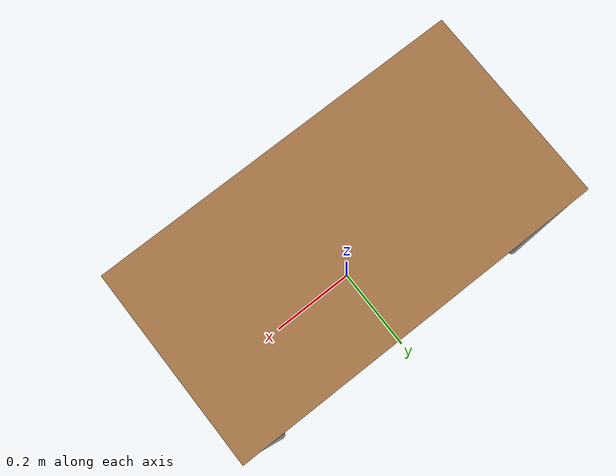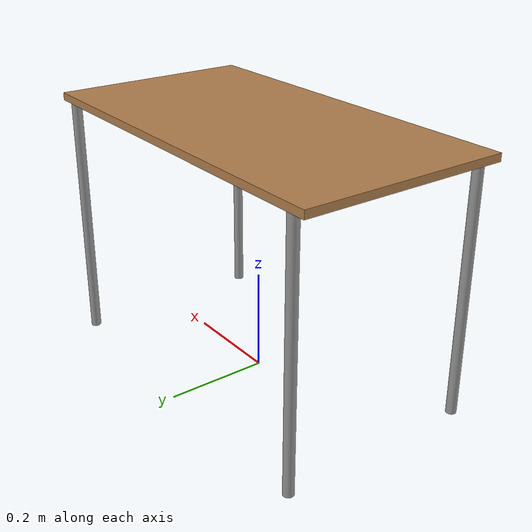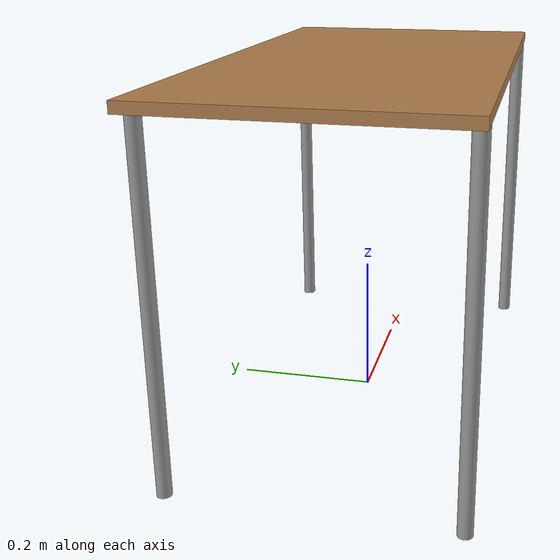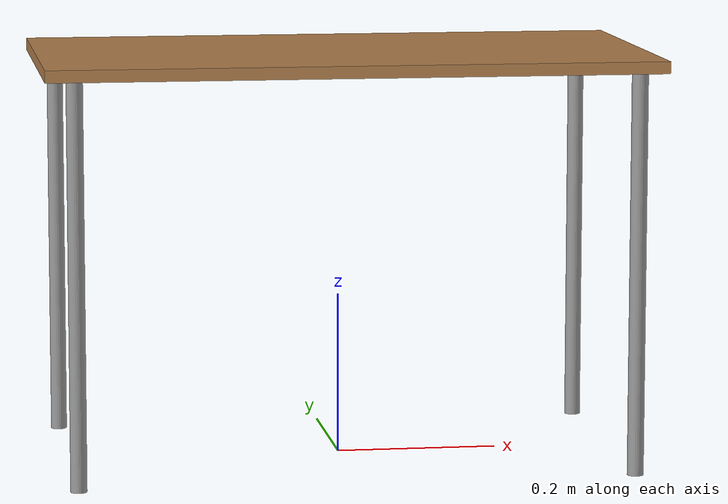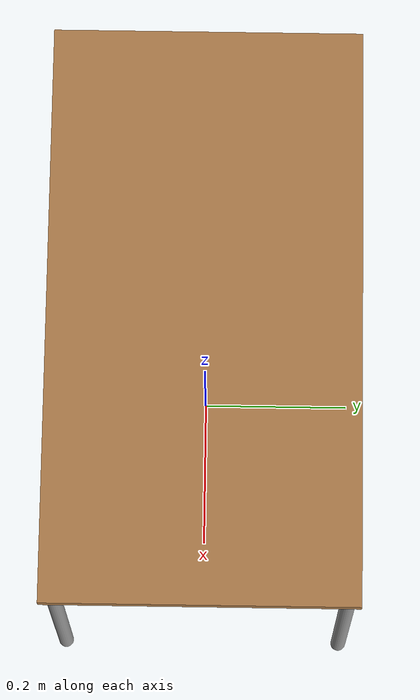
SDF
<sdf version="1.5">
  <model name="Table">
    <static>true</static>
    <link name="link">
      <!-- TABLE SURFACE -->
      <collision name="surface">
        <pose>0 0 0.5 0 0 0</pose>
        <geometry>
          <box>
            <size>0.75 0.4 0.015</size>
          </box>
        </geometry>
        <surface>
          <friction>
            <ode>
              <mu>0.6</mu>
              <mu2>0.6</mu2>
            </ode>
          </friction>
        </surface>
      </collision>
      <visual name="visual1">
        <pose>0 0 0.5 0 0 0</pose>
        <geometry>
          <box>
            <size>0.75 0.4 0.015</size>
          </box>
        </geometry>
        <material>
          <diffuse>1.0 1.0 1.0</diffuse>
          <script>
            <uri>file://media/materials/scripts/gazebo.material</uri>
            <name>Gazebo/Wood</name>
          </script>
          <pbr>
            <metal>
              <albedo_map>model://Table/Table_Diffuse.jpg</albedo_map>
            </metal>
          </pbr>
        </material>
      </visual>

      <!-- FRONT LEFT LEG -->
      <collision name="front_left_leg">
        <pose>0.34 0.9 0.25 0 0 0</pose>  <!-- Z = leg_length/2 = 0.5/2 -->
        <geometry>
          <cylinder>
            <radius>0.01</radius>
            <length>0.5</length>
          </cylinder>
        </geometry>
      </collision>
      <visual name="front_left_leg">
        <pose>0.34 0.19 0.25 0 0 0</pose>
        <geometry>
          <cylinder>
            <radius>0.01</radius>
            <length>0.5</length>
          </cylinder>
        </geometry>
        <material>
          <diffuse>0.5 0.5 0.5</diffuse>
          <script>
            <uri>file://media/materials/scripts/gazebo.material</uri>
            <name>Gazebo/Grey</name>
          </script>
        </material>
      </visual>

      <!-- FRONT RIGHT LEG -->
      <collision name="front_right_leg">
        <pose>0.34 -0.19 0.25 0 0 0</pose>
        <geometry>
          <cylinder>
            <radius>0.01</radius>
            <length>0.5</length>
          </cylinder>
        </geometry>
      </collision>
      <visual name="front_right_leg">
        <pose>0.34 -0.19 0.25 0 0 0</pose>
        <geometry>
          <cylinder>
            <radius>0.01</radius>
            <length>0.5</length>
          </cylinder>
        </geometry>
        <material>
          <diffuse>0.5 0.5 0.5</diffuse>
          <script>
            <uri>file://media/materials/scripts/gazebo.material</uri>
            <name>Gazebo/Grey</name>
          </script>
        </material>
      </visual>

      <!-- BACK RIGHT LEG -->
      <collision name="back_right_leg">
        <pose>-0.34 -0.19 0.25 0 0 0</pose>
        <geometry>
          <cylinder>
            <radius>0.01</radius>
            <length>0.5</length>
          </cylinder>
        </geometry>
      </collision>
      <visual name="back_right_leg">
        <pose>-0.34 -0.19 0.25 0 0 0</pose>
        <geometry>
          <cylinder>
            <radius>0.01</radius>
            <length>0.5</length>
          </cylinder>
        </geometry>
        <material>
          <diffuse>0.5 0.5 0.5</diffuse>
          <script>
            <uri>file://media/materials/scripts/gazebo.material</uri>
            <name>Gazebo/Grey</name>
          </script>
        </material>
      </visual>

      <!-- BACK LEFT LEG -->
      <collision name="back_left_leg">
        <pose>-0.34 0.19 0.25 0 0 0</pose>
        <geometry>
          <cylinder>
            <radius>0.01</radius>
            <length>0.5</length>
          </cylinder>
        </geometry>
      </collision>
      <visual name="back_left_leg">
        <pose>-0.34 0.19 0.25 0 0 0</pose>
        <geometry>
          <cylinder>
            <radius>0.01</radius>
            <length>0.5</length>
          </cylinder>
        </geometry>
        <material>
          <diffuse>0.5 0.5 0.5</diffuse>
          <script>
            <uri>file://media/materials/scripts/gazebo.material</uri>
            <name>Gazebo/Grey</name>
          </script>
        </material>
      </visual>
    </link>
  </model>
</sdf>
